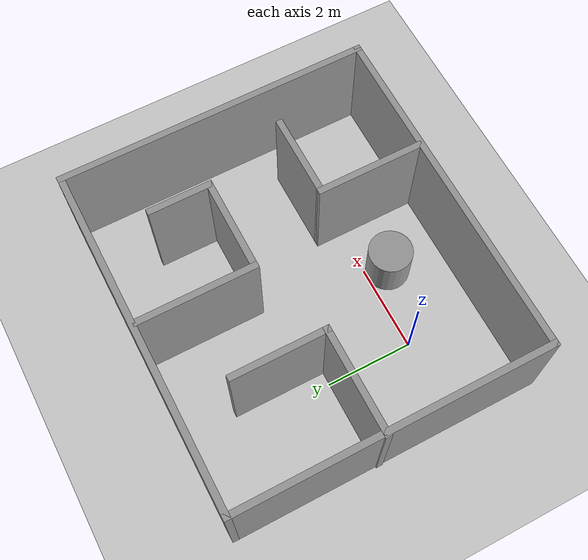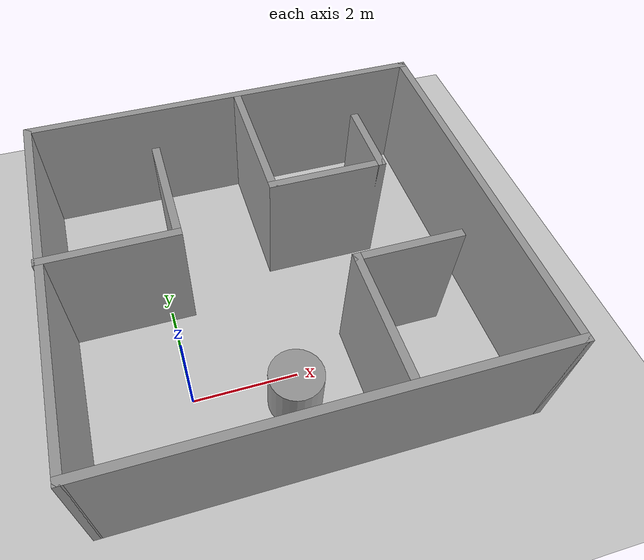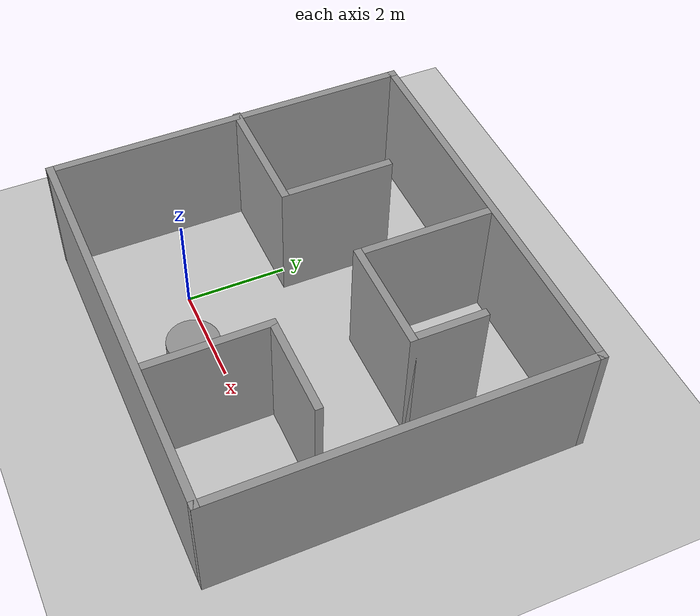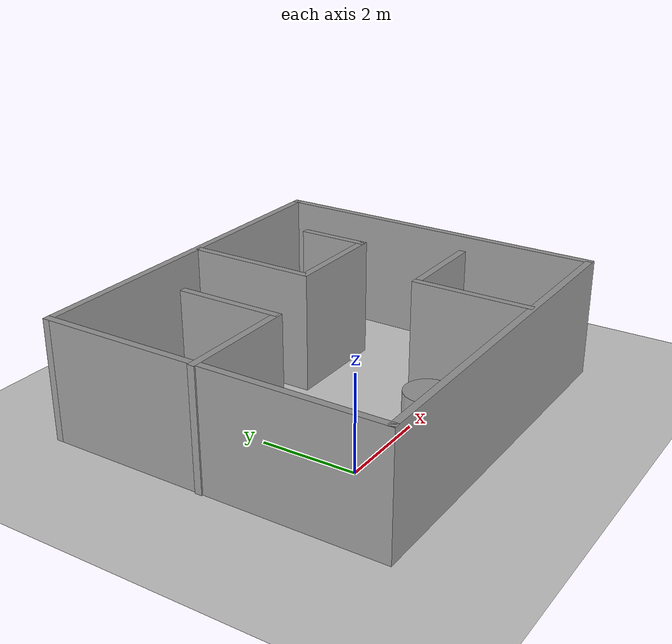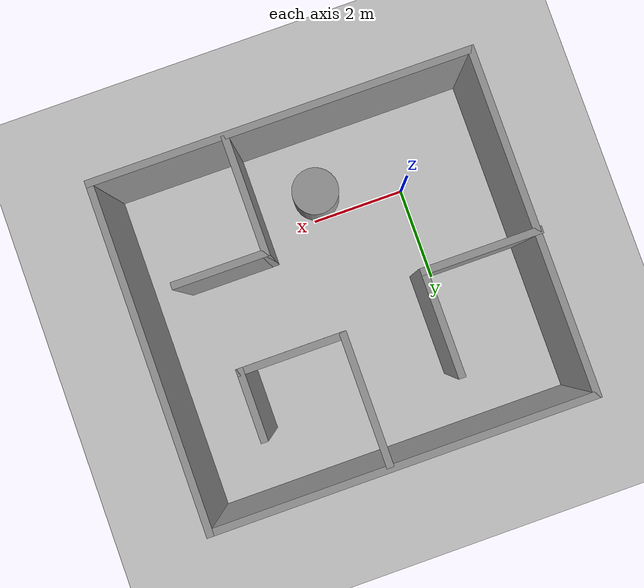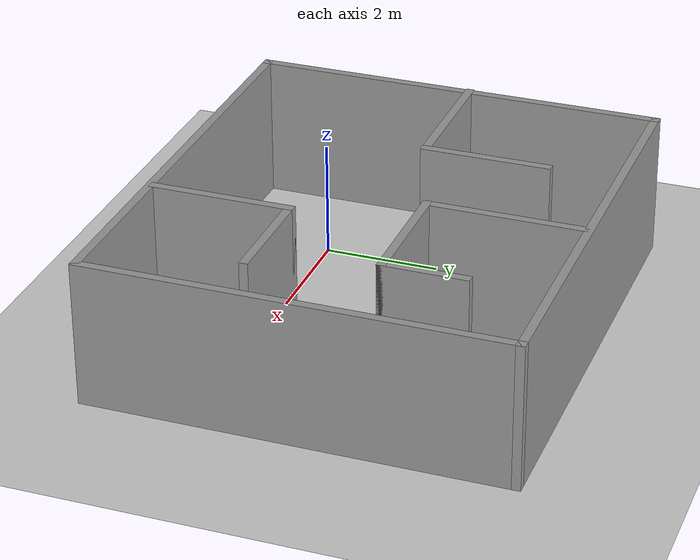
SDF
<sdf version="1.7">
 <world name="default">
  <light name="sun" type="directional">
   <pose>0 0 10 0 -0 0</pose>
   <diffuse>0.8 0.8 0.8 1</diffuse>
   <specular>0.2 0.2 0.2 1</specular>
   <attenuation>
    <range>1000</range>
    <constant>0.9</constant>
    <linear>0.01</linear>
    <quadratic>0.001</quadratic>
   </attenuation>
   <direction>-0.5 0.1 -0.9</direction>
   <spot><inner_angle>0</inner_angle><outer_angle>0</outer_angle><falloff>0</falloff></spot>
  </light>
  <model name="ground_plane">
   <static>1</static>
   <link name="link">
    <collision name="collision">
     <geometry><plane><normal>0 0 1</normal><size>100 100</size></plane></geometry>
     <surface><friction><ode><mu>100</mu><mu2>50</mu2></ode></friction></surface>
    </collision>
    <visual name="visual">
     <cast_shadows>0</cast_shadows>
     <geometry><plane><normal>0 0 1</normal><size>100 100</size></plane></geometry>
     <material>
      <script><uri>file://media/materials/scripts/gazebo.material</uri><name>Gazebo/Grey</name></script>
     </material>
    </visual>
   </link>
  </model>
  <gravity>0 0 -9.8</gravity>
  <magnetic_field>6e-06 2.3e-05 -4.2e-05</magnetic_field>
  <atmosphere type="adiabatic"/>
  <physics type="ode">
   <max_step_size>0.001</max_step_size>
   <real_time_factor>1</real_time_factor>
   <real_time_update_rate>1000</real_time_update_rate>
  </physics>
  <scene><ambient>0.4 0.4 0.4 1</ambient><background>0.7 0.7 0.7 1</background><shadows>1</shadows></scene>
  <audio><device>default</device></audio>
  <spherical_coordinates>
   <surface_model>EARTH_WGS84</surface_model>
   <latitude_deg>0</latitude_deg>
   <longitude_deg>0</longitude_deg>
   <elevation>0</elevation>
   <heading_deg>0</heading_deg>
  </spherical_coordinates>
  <model name="room">
   <pose>2.78988 1.69514 0 0 -0 0</pose>
   <link name="Wall_0">
    <collision name="Wall_0_Collision">
     <geometry><box><size>7.25 0.15 2.5</size></box></geometry>
     <pose>0 0 1.25 0 -0 0</pose>
    </collision>
    <visual name="Wall_0_Visual">
     <pose>0 0 1.25 0 -0 0</pose>
     <geometry><box><size>7.25 0.15 2.5</size></box></geometry>
     <material>
      <script><uri>file://media/materials/scripts/gazebo.material</uri><name>Gazebo/Grey</name></script>
      <ambient>1 1 1 1</ambient>
     </material>
     <meta><layer>0</layer></meta>
    </visual>
    <pose>-4.73517 0 0 0 -0 -1.5708</pose>
   </link>
   <link name="Wall_1">
    <collision name="Wall_1_Collision">
     <geometry><box><size>8 0.15 2.5</size></box></geometry>
     <pose>0 0 1.25 0 -0 0</pose>
    </collision>
    <visual name="Wall_1_Visual">
     <pose>0 0 1.25 0 -0 0</pose>
     <geometry><box><size>8 0.15 2.5</size></box></geometry>
     <material>
      <script><uri>file://media/materials/scripts/gazebo.material</uri><name>Gazebo/Grey</name></script>
      <ambient>1 1 1 1</ambient>
     </material>
     <meta><layer>0</layer></meta>
    </visual>
    <pose>-0.81017 -3.55 0 0 -0 0</pose>
   </link>
   <link name="Wall_11">
    <collision name="Wall_11_Collision">
     <geometry><box><size>2.75 0.15 2.5</size></box></geometry>
     <pose>0 0 1.25 0 -0 0</pose>
    </collision>
    <visual name="Wall_11_Visual">
     <pose>0 0 1.25 0 -0 0</pose>
     <geometry><box><size>2.75 0.15 2.5</size></box></geometry>
     <material>
      <script><uri>file://media/materials/scripts/gazebo.material</uri><name>Gazebo/Grey</name></script>
      <ambient>1 1 1 1</ambient>
     </material>
     <meta><layer>0</layer></meta>
    </visual>
    <pose>-0.544308 2.15823 0 0 -0 -1.5708</pose>
   </link>
   <link name="Wall_12">
    <collision name="Wall_12_Collision">
     <geometry><box><size>2.25 0.15 2.5</size></box></geometry>
     <pose>0 0 1.25 0 -0 0</pose>
    </collision>
    <visual name="Wall_12_Visual">
     <pose>0 0 1.25 0 -0 0</pose>
     <geometry><box><size>2.25 0.15 2.5</size></box></geometry>
     <material>
      <script><uri>file://media/materials/scripts/gazebo.material</uri><name>Gazebo/Grey</name></script>
      <ambient>1 1 1 1</ambient>
     </material>
     <meta><layer>0</layer></meta>
    </visual>
    <pose>0.505692 0.858229 0 0 -0 0</pose>
   </link>
   <link name="Wall_13">
    <collision name="Wall_13_Collision">
     <geometry><box><size>1.5 0.15 2.5</size></box></geometry>
     <pose>0 0 1.25 0 -0 0</pose>
    </collision>
    <visual name="Wall_13_Visual">
     <pose>0 0 1.25 0 -0 0</pose>
     <geometry><box><size>1.5 0.15 2.5</size></box></geometry>
     <material>
      <script><uri>file://media/materials/scripts/gazebo.material</uri><name>Gazebo/Grey</name></script>
      <ambient>1 1 1 1</ambient>
     </material>
     <meta><layer>0</layer></meta>
    </visual>
    <pose>1.55569 1.53323 0 0 -0 1.5708</pose>
   </link>
   <link name="Wall_2">
    <collision name="Wall_2_Collision">
     <geometry><box><size>7.25 0.15 2.5</size></box></geometry>
     <pose>0 0 1.25 0 -0 0</pose>
    </collision>
    <visual name="Wall_2_Visual">
     <pose>0 0 1.25 0 -0 0</pose>
     <geometry><box><size>7.25 0.15 2.5</size></box></geometry>
     <material>
      <script><uri>file://media/materials/scripts/gazebo.material</uri><name>Gazebo/Grey</name></script>
      <ambient>1 1 1 1</ambient>
     </material>
     <meta><layer>0</layer></meta>
    </visual>
    <pose>3.11483 0 0 0 -0 1.5708</pose>
   </link>
   <link name="Wall_3">
    <collision name="Wall_3_Collision">
     <geometry><box><size>8 0.15 2.5</size></box></geometry>
     <pose>0 0 1.25 0 -0 0</pose>
    </collision>
    <visual name="Wall_3_Visual">
     <pose>0 0 1.25 0 -0 0</pose>
     <geometry><box><size>8 0.15 2.5</size></box></geometry>
     <material>
      <script><uri>file://media/materials/scripts/gazebo.material</uri><name>Gazebo/Grey</name></script>
      <ambient>1 1 1 1</ambient>
     </material>
     <meta><layer>0</layer></meta>
    </visual>
    <pose>-0.81017 3.55 0 0 -0 3.14159</pose>
   </link>
   <link name="Wall_5">
    <collision name="Wall_5_Collision">
     <geometry><box><size>2.5 0.15 2.5</size></box></geometry>
     <pose>0 0 1.25 0 -0 0</pose>
    </collision>
    <visual name="Wall_5_Visual">
     <pose>0 0 1.25 0 -0 0</pose>
     <geometry><box><size>2.5 0.15 2.5</size></box></geometry>
     <material>
      <script><uri>file://media/materials/scripts/gazebo.material</uri><name>Gazebo/Grey</name></script>
      <ambient>1 1 1 1</ambient>
     </material>
     <meta><layer>0</layer></meta>
    </visual>
    <pose>-3.59076 0.215665 0 0 -0 0</pose>
   </link>
   <link name="Wall_6">
    <collision name="Wall_6_Collision">
     <geometry><box><size>2.25 0.15 2.5</size></box></geometry>
     <pose>0 0 1.25 0 -0 0</pose>
    </collision>
    <visual name="Wall_6_Visual">
     <pose>0 0 1.25 0 -0 0</pose>
     <geometry><box><size>2.25 0.15 2.5</size></box></geometry>
     <material>
      <script><uri>file://media/materials/scripts/gazebo.material</uri><name>Gazebo/Grey</name></script>
      <ambient>1 1 1 1</ambient>
     </material>
     <meta><layer>0</layer></meta>
    </visual>
    <pose>-2.41576 1.26567 0 0 -0 1.5708</pose>
   </link>
   <link name="Wall_8">
    <collision name="Wall_8_Collision">
     <geometry><box><size>2.5 0.15 2.5</size></box></geometry>
     <pose>0 0 1.25 0 -0 0</pose>
    </collision>
    <visual name="Wall_8_Visual">
     <pose>0 0 1.25 0 -0 0</pose>
     <geometry><box><size>2.5 0.15 2.5</size></box></geometry>
     <material>
      <script><uri>file://media/materials/scripts/gazebo.material</uri><name>Gazebo/Grey</name></script>
      <ambient>1 1 1 1</ambient>
     </material>
     <meta><layer>0</layer></meta>
    </visual>
    <pose>0.342808 -2.31075 0 0 -0 1.5708</pose>
   </link>
   <link name="Wall_9">
    <collision name="Wall_9_Collision">
     <geometry><box><size>2 0.15 2.5</size></box></geometry>
     <pose>0 0 1.25 0 -0 0</pose>
    </collision>
    <visual name="Wall_9_Visual">
     <pose>0 0 1.25 0 -0 0</pose>
     <geometry><box><size>2 0.15 2.5</size></box></geometry>
     <material>
      <script><uri>file://media/materials/scripts/gazebo.material</uri><name>Gazebo/Grey</name></script>
      <ambient>1 1 1 1</ambient>
     </material>
     <meta><layer>0</layer></meta>
    </visual>
    <pose>1.26781 -1.13575 0 0 -0 0</pose>
   </link>
   <static>1</static>
  </model>
  <model name="unit_cylinder">
   <pose>1.7964 -0.487121 0.499997 3e-06 4e-06 -0</pose>
   <link name="link">
    <inertial>
     <mass>1</mass>
     <inertia><ixx>0.145833</ixx><ixy>0</ixy><ixz>0</ixz><iyy>0.145833</iyy><iyz>0</iyz><izz>0.125</izz></inertia>
    </inertial>
    <collision name="collision">
     <geometry><cylinder><radius>0.5</radius><length>1</length></cylinder></geometry>
    </collision>
    <visual name="visual">
     <geometry><cylinder><radius>0.5</radius><length>1</length></cylinder></geometry>
     <material>
      <script><name>Gazebo/Grey</name><uri>file://media/materials/scripts/gazebo.material</uri></script>
     </material>
    </visual>
   </link>
  </model>
 </world>
</sdf>
